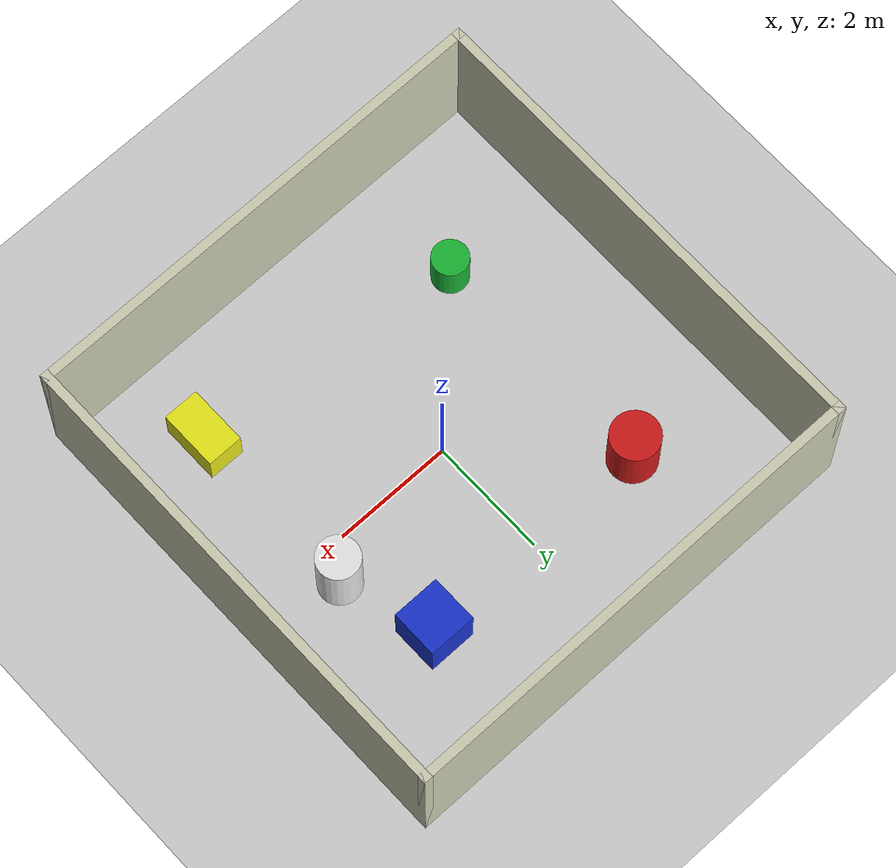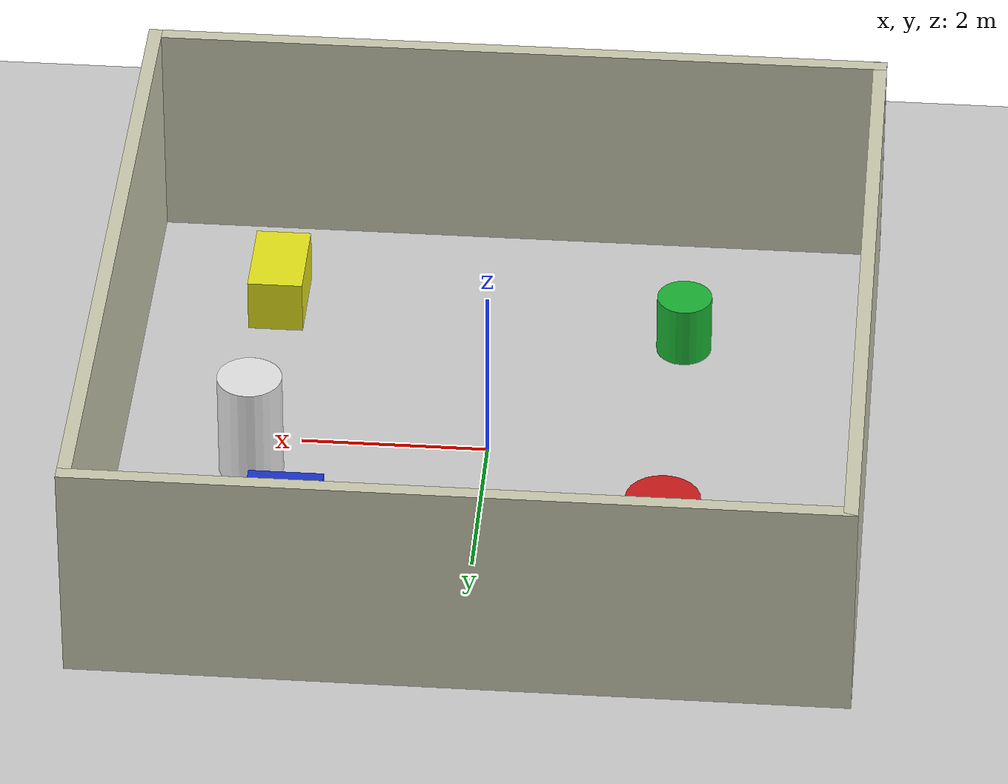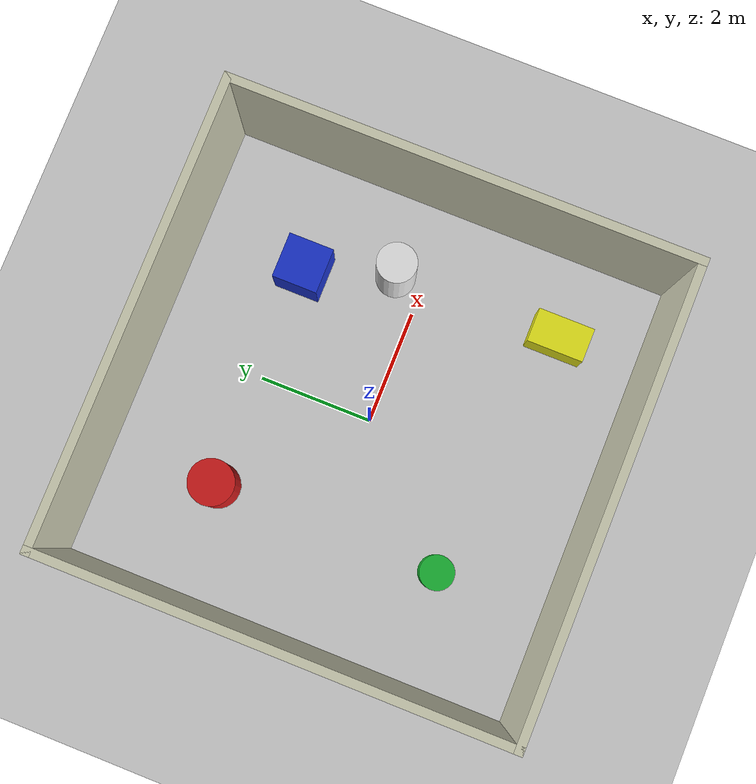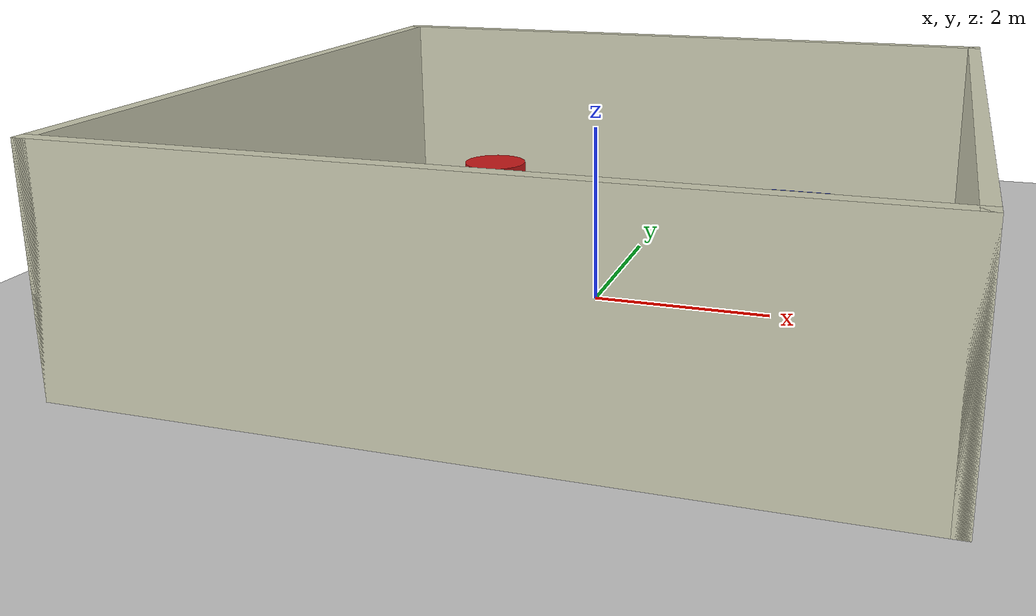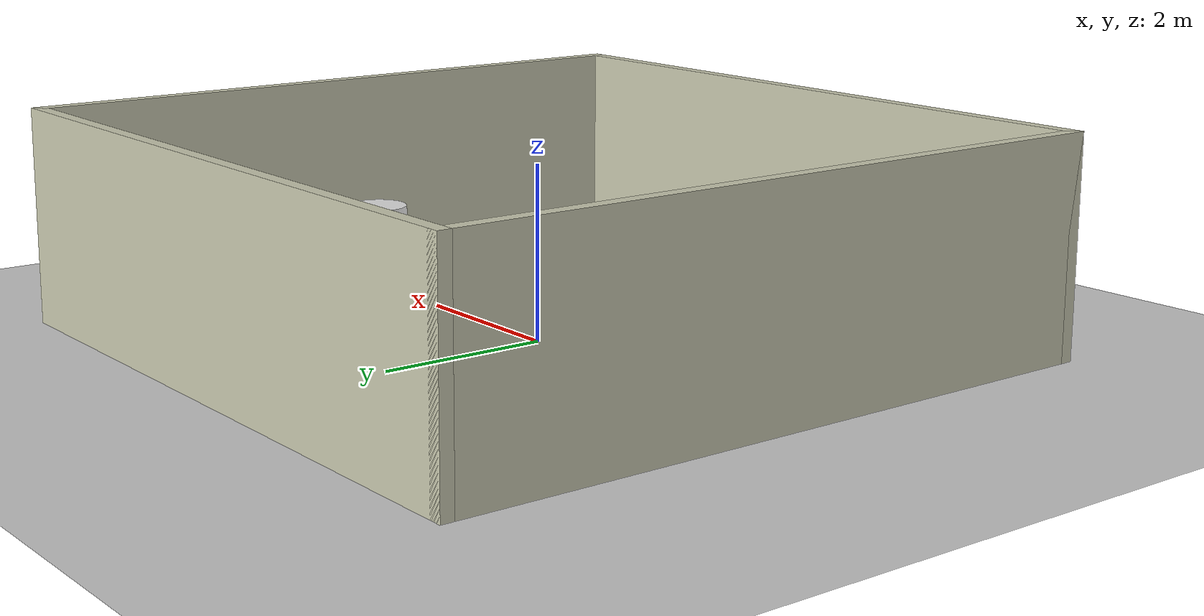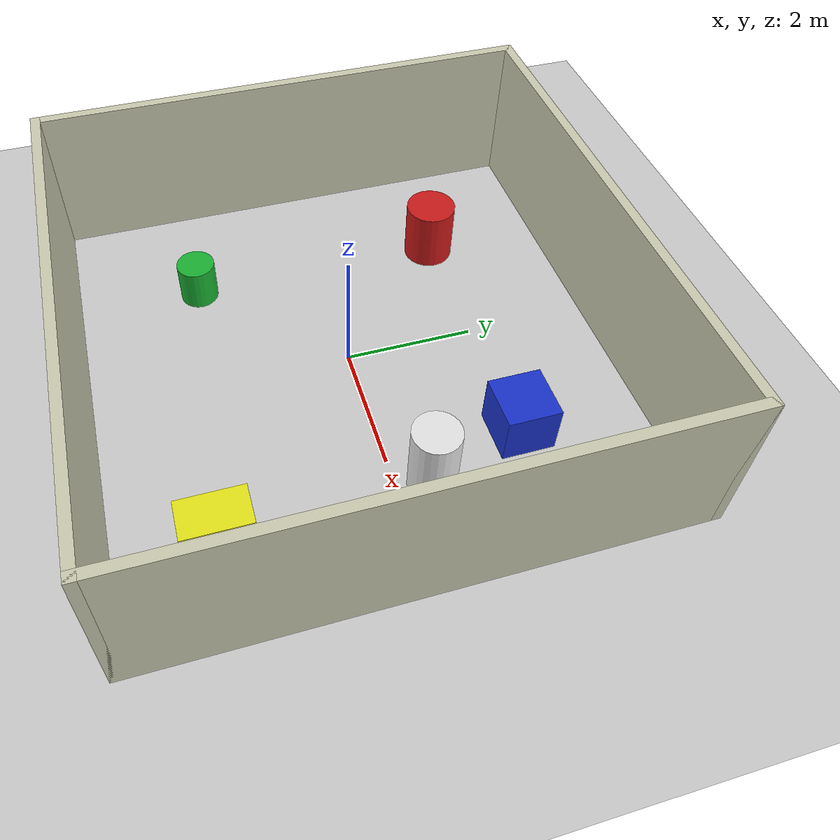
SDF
<?xml version="1.0" ?>
<sdf version="1.6">
  <world name="single_room">

    <physics type="ode">
      <max_step_size>0.001</max_step_size>
      <real_time_factor>1</real_time_factor>
    </physics>

    <include>
      <uri>model://sun</uri>
    </include>
    <include>
      <uri>model://ground_plane</uri>
    </include>

    <!-- Single room: 8m x 8m with 4-5 obstacles      -->
    <!-- Robot spawns near center at (0, 0)            -->

    <!-- === WALLS === -->
    <!-- South wall -->
    <model name="wall_south">
      <static>true</static>
      <pose>0 -4 1.25 0 0 0</pose>
      <link name="link">
        <collision name="collision"><geometry><box><size>8.15 0.15 2.5</size></box></geometry></collision>
        <visual name="visual"><geometry><box><size>8.15 0.15 2.5</size></box></geometry>
          <material>
            <ambient>0.8 0.8 0.7 1</ambient>
            <diffuse>0.8 0.8 0.7 1</diffuse>
          </material>
        </visual>
      </link>
    </model>

    <!-- North wall -->
    <model name="wall_north">
      <static>true</static>
      <pose>0 4 1.25 0 0 0</pose>
      <link name="link">
        <collision name="collision"><geometry><box><size>8.15 0.15 2.5</size></box></geometry></collision>
        <visual name="visual"><geometry><box><size>8.15 0.15 2.5</size></box></geometry>
          <material>
            <ambient>0.8 0.8 0.7 1</ambient>
            <diffuse>0.8 0.8 0.7 1</diffuse>
          </material>
        </visual>
      </link>
    </model>

    <!-- West wall -->
    <model name="wall_west">
      <static>true</static>
      <pose>-4 0 1.25 0 0 0</pose>
      <link name="link">
        <collision name="collision"><geometry><box><size>0.15 8.15 2.5</size></box></geometry></collision>
        <visual name="visual"><geometry><box><size>0.15 8.15 2.5</size></box></geometry>
          <material>
            <ambient>0.8 0.8 0.7 1</ambient>
            <diffuse>0.8 0.8 0.7 1</diffuse>
          </material>
        </visual>
      </link>
    </model>

    <!-- East wall -->
    <model name="wall_east">
      <static>true</static>
      <pose>4 0 1.25 0 0 0</pose>
      <link name="link">
        <collision name="collision"><geometry><box><size>0.15 8.15 2.5</size></box></geometry></collision>
        <visual name="visual"><geometry><box><size>0.15 8.15 2.5</size></box></geometry>
          <material>
            <ambient>0.8 0.8 0.7 1</ambient>
            <diffuse>0.8 0.8 0.7 1</diffuse>
          </material>
        </visual>
      </link>
    </model>

    <!-- === OBSTACLES === -->

    <!-- Obstacle 1: Red cylinder (top-left area) -->
    <model name="red_cylinder">
      <static>true</static>
      <pose>-2.0 2.0 0.5 0 0 0</pose>
      <link name="link">
        <collision name="collision"><geometry><cylinder><radius>0.4</radius><length>1.0</length></cylinder></geometry></collision>
        <visual name="visual"><geometry><cylinder><radius>0.4</radius><length>1.0</length></cylinder></geometry>
          <material>
            <ambient>0.8 0.1 0.1 1</ambient>
            <diffuse>0.8 0.1 0.1 1</diffuse>
          </material>
        </visual>
      </link>
    </model>

    <!-- Obstacle 2: Blue box (top-right area) -->
    <model name="blue_box">
      <static>true</static>
      <pose>2.0 2.0 0.4 0 0 0</pose>
      <link name="link">
        <collision name="collision"><geometry><box><size>0.8 0.8 0.8</size></box></geometry></collision>
        <visual name="visual"><geometry><box><size>0.8 0.8 0.8</size></box></geometry>
          <material>
            <ambient>0.1 0.2 0.8 1</ambient>
            <diffuse>0.1 0.2 0.8 1</diffuse>
          </material>
        </visual>
      </link>
    </model>

    <!-- Obstacle 3: Green cylinder (bottom-left area) -->
    <model name="green_cylinder">
      <static>true</static>
      <pose>-2.0 -2.0 0.35 0 0 0</pose>
      <link name="link">
        <collision name="collision"><geometry><cylinder><radius>0.3</radius><length>0.7</length></cylinder></geometry></collision>
        <visual name="visual"><geometry><cylinder><radius>0.3</radius><length>0.7</length></cylinder></geometry>
          <material>
            <ambient>0.1 0.7 0.2 1</ambient>
            <diffuse>0.1 0.7 0.2 1</diffuse>
          </material>
        </visual>
      </link>
    </model>

    <!-- Obstacle 4: Yellow box (bottom-right area) -->
    <model name="yellow_box">
      <static>true</static>
      <pose>2.5 -2.5 0.3 0 0 0</pose>
      <link name="link">
        <collision name="collision"><geometry><box><size>0.6 1.0 0.6</size></box></geometry></collision>
        <visual name="visual"><geometry><box><size>0.6 1.0 0.6</size></box></geometry>
          <material>
            <ambient>0.9 0.9 0.1 1</ambient>
            <diffuse>0.9 0.9 0.1 1</diffuse>
          </material>
        </visual>
      </link>
    </model>

    <!-- Obstacle 5: White cylinder (center-right) -->
    <model name="white_cylinder">
      <static>true</static>
      <pose>2.5 0.5 0.6 0 0 0</pose>
      <link name="link">
        <collision name="collision"><geometry><cylinder><radius>0.35</radius><length>1.2</length></cylinder></geometry></collision>
        <visual name="visual"><geometry><cylinder><radius>0.35</radius><length>1.2</length></cylinder></geometry>
          <material>
            <ambient>0.9 0.9 0.9 1</ambient>
            <diffuse>0.9 0.9 0.9 1</diffuse>
          </material>
        </visual>
      </link>
    </model>

    <!-- Room light -->
    <light name="room_light" type="point">
      <pose>0 0 2.4 0 0 0</pose>
      <diffuse>0.9 0.9 0.9 1</diffuse>
      <attenuation>
        <range>10</range>
        <constant>0.2</constant>
        <linear>0.04</linear>
        <quadratic>0.01</quadratic>
      </attenuation>
    </light>

  </world>
</sdf>
